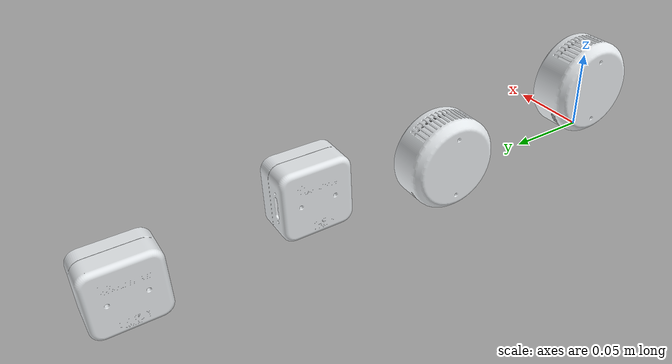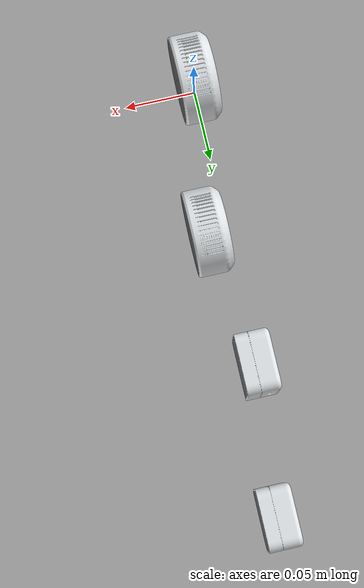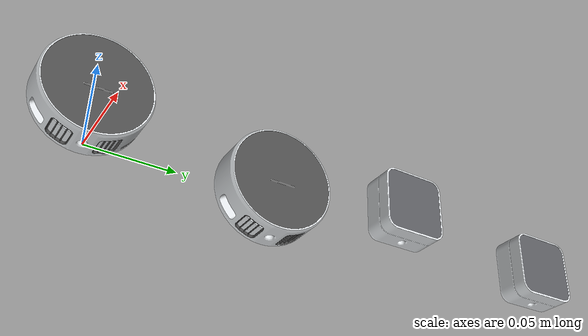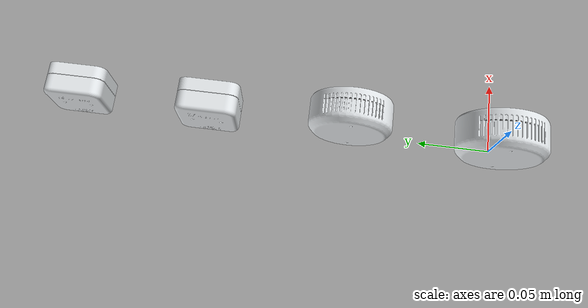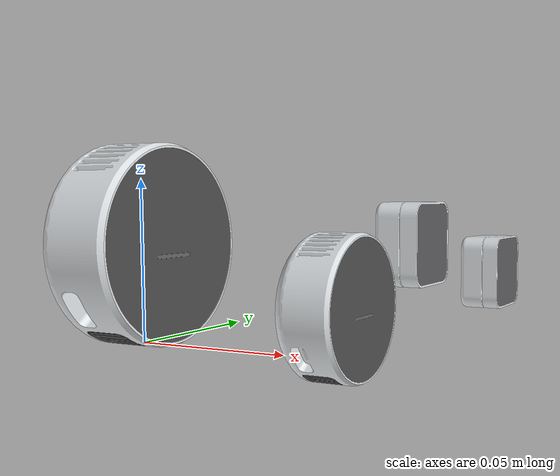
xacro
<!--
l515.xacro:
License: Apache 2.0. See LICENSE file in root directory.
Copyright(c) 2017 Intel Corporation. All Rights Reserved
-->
<?xml version="1.0"?>
<robot name="camera_test" xmlns:xacro="http://ros.org/wiki/xacro">
  <xacro:arg name="use_nominal_extrinsics" default="true"/>
  <xacro:arg name="add_plug" default="false" />
  <xacro:arg name="use_mesh" default="true" />
  <xacro:include filename="$(find tahoma_description)/urdf/l515.xacro" />
  <xacro:include filename="$(find tahoma_description)/urdf/d405.xacro" />

  <link name="base_link" />
  <xacro:sensor_l515 name="l515_bottom" parent="base_link" use_nominal_extrinsics="$(arg use_nominal_extrinsics)" add_plug="$(arg add_plug)" use_mesh="$(arg use_mesh)">
    <origin xyz="0 0 0" rpy="0 0 0"/>
  </xacro:sensor_l515>
    <xacro:sensor_l515 name="l515_back" parent="base_link" use_nominal_extrinsics="$(arg use_nominal_extrinsics)" add_plug="$(arg add_plug)" use_mesh="$(arg use_mesh)" attach_at_bottom="false">
    <origin xyz="0 .1 0" rpy="0 0 0"/>
  </xacro:sensor_l515>
  <xacro:sensor_d405 name="d405_bottom" parent="base_link" use_nominal_extrinsics="$(arg use_nominal_extrinsics)" add_plug="$(arg add_plug)" use_mesh="$(arg use_mesh)" attach_at_bottom="true">
    <origin xyz="0 .2 0" rpy="0 0 0"/>
  </xacro:sensor_d405>
  <xacro:sensor_d405 name="d405_back" parent="base_link" use_nominal_extrinsics="$(arg use_nominal_extrinsics)" add_plug="$(arg add_plug)" use_mesh="$(arg use_mesh)" attach_at_bottom="false">
    <origin xyz="0 .3 0" rpy="0 0 0"/>
  </xacro:sensor_d405>
</robot>

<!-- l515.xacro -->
<robot name="sensor_l515" xmlns:xacro="http://ros.org/wiki/xacro">
  <!-- Includes -->
  <xacro:include filename="$(find realsense2_description)/urdf/_materials.urdf.xacro"/>
  <xacro:include
          filename="$(find realsense2_description)/urdf/_usb_plug.urdf.xacro"/> <!-- this specific plug does not apply to L515 -->

  <xacro:macro name="sensor_l515"
               params="parent *origin name:=camera use_nominal_extrinsics:=false add_plug:=false use_mesh:=true attach_at_bottom:=true">
    <xacro:property name="M_PI" value="3.1415926535897931"/>

    <!-- The following values are approximate, and the camera node
     publishing TF values with actual calibrated camera extrinsic values -->
    <xacro:property name="l515_cam_depth_to_infra_offset" value="0.0"/>

    <!-- The following values model the aluminum peripherial case for the
  	L515 camera, with the camera joint represented by the actual
  	peripheral camera tripod mount -->
    <xacro:property name="l515_cam_width" value="0.061"/>
    <xacro:property name="l515_cam_height" value="0.06065"/>
    <xacro:property name="l515_cam_depth" value="0.026"/>
    <xacro:property name="l515_cam_mount_from_glass_offset" value="0.012"/>
    <!-- Zero depth to glass: see datasheet Revision 002, Fig. 2-2 page 11 -->
    <xacro:property name="l515_zero_depth_to_glass" value="0.0045"/>
    <!-- convenience precomputation to avoid clutter-->
    <xacro:property name="l515_depth_x_offset_from_mount"
                    value="${l515_cam_mount_from_glass_offset-l515_zero_depth_to_glass}"/>

    <!-- The following offset is relative the the physical L515 camera peripherial
  	camera tripod mount -->
    <xacro:property name="l515_cam_depth_px" value="${l515_depth_x_offset_from_mount}"/>
    <xacro:property name="l515_cam_depth_py" value="0.0"/>
    <xacro:property name="l515_cam_center" value="0.03015"/>
    <xacro:property name="l515_cam_center_to_transmitter_pz" value="0.001"/>
    <xacro:property name="l515_cam_transmitter_to_depth_pz" value="-0.010"/>
    <xacro:property name="l515_cam_transmitter_to_color_pz" value="0.014"/>
    <xacro:property name="l515_cam_depth_pz"
                    value="${l515_cam_center+l515_cam_center_to_transmitter_pz+l515_cam_transmitter_to_depth_pz}"/>
    <xacro:property name="l515_cam_center_to_depth_pz"
                    value="${l515_cam_center_to_transmitter_pz+l515_cam_transmitter_to_depth_pz}"/>
    <xacro:property name="abs_mount_from_center" value="0.020"/>

    <!-- IMU position (p) and rotation (r) offsets from the camera color frame -->
    <!-- These values are approximate and depend on the actual calibrated camera extrinsic values -->
    <xacro:property name="l515_cam_color_to_imu_px" value="-0.00410137791186571"/>
    <xacro:property name="l515_cam_color_to_imu_py" value="-0.0129784867167473"/>
    <xacro:property name="l515_cam_color_to_imu_pz" value="0.00256138201802969"/>
    <xacro:property name="l515_cam_color_to_imu_rx" value="-0.006161012"/>
    <xacro:property name="l515_cam_color_to_imu_ry" value="0.020193459"/>
    <xacro:property name="l515_cam_color_to_imu_rz" value="0.016301375"/>

    <!-- camera body, with origin at bottom screw mount -->
    <link name="${name}_bottom_screw_frame"/>
    <xacro:if value="${attach_at_bottom}">
      <joint name="${name}_joint" type="fixed">
        <xacro:insert_block name="origin"/>
        <parent link="${parent}"/>
        <child link="${name}_bottom_screw_frame"/>
      </joint>
    </xacro:if>
    <xacro:unless value="${attach_at_bottom}">
      <link name="${name}_back_to_bottom_shim"/>
      <joint name="${name}_adapter_joint" type="fixed">
        <xacro:insert_block name="origin"/>
        <parent link="${parent}"/>
        <child link="${name}_back_to_bottom_shim"/>
      </joint>
      <joint name="${name}_joint" type="fixed">
        <origin xyz=".014 0 -.03015" rpy="0 0 0"/>
        <parent link="${name}_back_to_bottom_shim"/>
        <child link="${name}_bottom_screw_frame"/>
      </joint>
    </xacro:unless>

    <joint name="${name}_link_joint" type="fixed">
      <origin xyz="${l515_cam_depth_px} ${l515_cam_depth_py} ${l515_cam_depth_pz}" rpy="0 0 0"/>
      <parent link="${name}_bottom_screw_frame"/>
      <child link="${name}_link"/>
    </joint>

    <link name="${name}_link">
      <visual>
        <!-- the mesh origin is in the middle of the front plate -->
        <xacro:if value="${use_mesh}">
          <origin xyz="${l515_zero_depth_to_glass} 0 ${-l515_cam_center_to_depth_pz}" rpy="0 0 ${M_PI/2}"/>
          <geometry>
            <mesh filename="package://tahoma_description/meshes/l515.dae"/>
          </geometry>
        </xacro:if>
        <xacro:unless value="${use_mesh}">
          <origin xyz="${-l515_cam_depth_px+l515_cam_mount_from_glass_offset-l515_cam_depth/2} 0 ${-l515_cam_center_to_depth_pz}"
                  rpy="${M_PI/2} 0 ${M_PI/2}"/>
          <geometry>
            <cylinder radius="${l515_cam_width/2.0}" length="${l515_cam_depth}"/>
          </geometry>
          <material name="aluminum"/>
        </xacro:unless>
      </visual>
      <collision>
        <origin xyz="${-l515_cam_depth_px+l515_cam_mount_from_glass_offset-l515_cam_depth/2} 0 ${-l515_cam_center_to_depth_pz}"
                rpy="${M_PI/2} 0 ${M_PI/2}"/>
        <geometry>
          <cylinder radius="${l515_cam_width/2.0}" length="${l515_cam_depth}"/>
        </geometry>
      </collision>
      <inertial>
        <!-- The following are not reliable values, and should not be used for modeling -->
        <!-- calculated assuming full cylinder as described here: https://en.wikipedia.org/wiki/List_of_moments_of_inertia -->
        <mass value="0.095"/>
        <origin xyz="0 0 0"/>
        <inertia ixx="0.000044" ixy="0.0" ixz="0.0" iyy="0.000027" iyz="0.0" izz="0.000027"/>
      </inertial>
    </link>

    <joint name="${name}_lower_mount_joint" type="fixed">
      <origin xyz="${l515_cam_mount_from_glass_offset-l515_cam_depth} 0 ${l515_cam_center-abs_mount_from_center}"
              rpy="0 0 0"/>
      <parent link="${name}_bottom_screw_frame"/>
      <child link="${name}_lower_mount"/>
    </joint>
    <link name="${name}_lower_mount"/>

    <joint name="${name}_upper_mount_joint" type="fixed">
      <origin xyz="${l515_cam_mount_from_glass_offset-l515_cam_depth} 0 ${l515_cam_center+abs_mount_from_center}"
              rpy="0 0 0"/>
      <parent link="${name}_bottom_screw_frame"/>
      <child link="${name}_upper_mount"/>
    </joint>
    <link name="${name}_upper_mount"/>

    <!-- Use the nominal extrinsics between camera frames if the calibrated extrinsics aren't being published. e.g. running the device in simulation  -->
    <xacro:if value="${use_nominal_extrinsics}">
      <!-- camera depth joints and links -->
      <joint name="${name}_depth_joint" type="fixed">
        <origin xyz="0 0 0" rpy="0 0 0"/>
        <parent link="${name}_link"/>
        <child link="${name}_depth_frame"/>
      </joint>
      <link name="${name}_depth_frame"/>

      <joint name="${name}_depth_optical_joint" type="fixed">
        <origin xyz="0 0 0" rpy="${-M_PI/2} 0 ${-M_PI/2}"/>
        <parent link="${name}_depth_frame"/>
        <child link="${name}_depth_optical_frame"/>
      </joint>
      <link name="${name}_depth_optical_frame"/>

      <!-- camera left IR joints and links -->
      <joint name="${name}_infra_joint" type="fixed">
        <origin xyz="0 ${l515_cam_depth_to_infra_offset} 0" rpy="0 0 0"/>
        <parent link="${name}_link"/>
        <child link="${name}_infra_frame"/>
      </joint>
      <link name="${name}_infra_frame"/>

      <joint name="${name}_infra_optical_joint" type="fixed">
        <origin xyz="0 0 0" rpy="${-M_PI/2} 0 ${-M_PI/2}"/>
        <parent link="${name}_infra_frame"/>
        <child link="${name}_infra_optical_frame"/>
      </joint>
      <link name="${name}_infra_optical_frame"/>

      <!-- camera color joints and links -->
      <joint name="${name}_color_joint" type="fixed">
        <origin xyz="0 0 ${-l515_cam_transmitter_to_depth_pz+l515_cam_transmitter_to_color_pz}" rpy="0 0 0"/>
        <parent link="${name}_link"/>
        <child link="${name}_color_frame"/>
      </joint>
      <link name="${name}_color_frame"/>

      <joint name="${name}_color_optical_joint" type="fixed">
        <origin xyz="0 0 0" rpy="${-M_PI/2} 0 ${-M_PI/2}"/>
        <parent link="${name}_color_frame"/>
        <child link="${name}_color_optical_frame"/>
      </joint>
      <link name="${name}_color_optical_frame"/>

      <!-- camera IMU joints and links -->
      <link name="${name}_gyro_frame"/>
      <link name="${name}_gyro_optical_frame"/>
      <link name="${name}_accel_frame"/>
      <link name="${name}_accel_optical_frame"/>

      <joint name="${name}_gyro_joint" type="fixed">
        <origin xyz="${l515_cam_color_to_imu_px} ${l515_cam_color_to_imu_py} ${l515_cam_color_to_imu_pz}"
                rpy="${l515_cam_color_to_imu_rx} ${l515_cam_color_to_imu_ry} ${l515_cam_color_to_imu_rz}"/>
        <parent link="${name}_color_frame"/>
        <child link="${name}_gyro_frame"/>
      </joint>

      <joint name="${name}_gyro_optical_joint" type="fixed">
        <origin xyz="0 0 0" rpy="${-M_PI/2} 0 ${-M_PI/2}"/>
        <parent link="${name}_gyro_frame"/>
        <child link="${name}_gyro_optical_frame"/>
      </joint>

      <joint name="${name}_accel_joint" type="fixed">
        <origin xyz="${l515_cam_color_to_imu_px} ${l515_cam_color_to_imu_py} ${l515_cam_color_to_imu_pz}"
                rpy="${l515_cam_color_to_imu_rx} ${l515_cam_color_to_imu_ry} ${l515_cam_color_to_imu_rz}"/>
        <parent link="${name}_color_frame"/>
        <child link="${name}_accel_frame"/>
      </joint>

      <joint name="${name}_accel_optical_joint" type="fixed">
        <origin xyz="0 0 0" rpy="${-M_PI/2} 0 ${-M_PI/2}"/>
        <parent link="${name}_accel_frame"/>
        <child link="${name}_accel_optical_frame"/>
      </joint>
    </xacro:if>
    <xacro:if value="${add_plug}">
      <xacro:usb_plug parent="${name}_bottom_screw_frame" name="${name}_usb_plug">
        <origin xyz="${l515_cam_mount_from_glass_offset-0.0148} -0.018 0.018" rpy="${M_PI/4} 0 0 "/>
      </xacro:usb_plug>
    </xacro:if>

  </xacro:macro>
</robot>

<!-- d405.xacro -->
<robot name="sensor_d405" xmlns:xacro="http://ros.org/wiki/xacro">
  <!-- Includes -->

  <xacro:include filename="$(find realsense2_description)/urdf/_usb_plug.urdf.xacro" />

  <xacro:macro name="sensor_d405"
               params="parent *origin  name:=camera  use_nominal_extrinsics:=false add_plug:=false use_mesh:=true attach_at_bottom:=true">

    <!-- The following values are approximate, and the camera node
     publishing TF values with actual calibrated camera extrinsic values -->
    <xacro:property name="d405_cam_depth_to_infra1_offset" value="0.009"/>
    <xacro:property name="d405_cam_depth_to_infra2_offset" value="-0.009"/>
    <!-- Color stream from left imager -->
    <xacro:property name="d405_cam_depth_to_color_offset" value="-0.009"/>

    <!-- The following values model the aluminum peripherial case for the
  	d405 camera, with the camera joint represented by the actual
  	peripherial camera tripod mount -->
    <xacro:property name="d405_cam_width" value="0.042"/>
    <xacro:property name="d405_cam_height" value="0.042"/>
    <xacro:property name="d405_cam_depth" value="0.023"/>
    <xacro:property name="d405_cam_mount_from_center_offset" value="0.00835"/>
    <xacro:property name="d405_cam_mount_from_front" value=".01465"/>

    <!-- The following offset is relative the  physical d405 camera peripheral
  	camera tripod mount -->
    <!-- Distance from mount to front glass, minus front glass to depth origin (via datasheet) -->
    <xacro:property name="d405_cam_depth_px" value="${d405_cam_mount_from_front - 0.0027}"/>
    <xacro:property name="d405_cam_depth_py" value="0"/>
    <xacro:property name="d405_cam_depth_pz" value="${d405_cam_height/2}"/>

    <!-- camera body, with origin at bottom screw mount -->
    <link name="${name}_bottom_screw_frame"/>
    <xacro:if value="${attach_at_bottom}">
      <joint name="${name}_joint" type="fixed">
        <xacro:insert_block name="origin"/>
        <parent link="${parent}"/>
        <child link="${name}_bottom_screw_frame"/>
      </joint>
    </xacro:if>
    <xacro:unless value="${attach_at_bottom}">
      <link name="${name}_back_to_bottom_shim"/>
      <joint name="${name}_adapter_joint" type="fixed">
        <xacro:insert_block name="origin"/>
        <parent link="${parent}"/>
        <child link="${name}_back_to_bottom_shim"/>
      </joint>
      <joint name="${name}_joint" type="fixed">
        <origin xyz=".00835 0 -.021236" rpy="0 0 0"/>
        <parent link="${name}_back_to_bottom_shim"/>
        <child link="${name}_bottom_screw_frame"/>
      </joint>
    </xacro:unless>

    <joint name="${name}_link_joint" type="fixed">
      <origin xyz="${d405_cam_depth_px} ${d405_cam_depth_py} ${d405_cam_depth_pz}" rpy="0 0 0"/>
      <parent link="${name}_bottom_screw_frame"/>
      <child link="${name}_link" />
    </joint>

    <link name="${name}_link">
      <visual>
        <xacro:if value="${use_mesh}">
          <origin xyz="${-d405_cam_depth_px} 0 ${-d405_cam_height / 2}" rpy="0 0 0 "/>
          <geometry>
            <mesh filename="package://tahoma_description/meshes/d405.dae" />
          </geometry>
          <material name="aluminum"/>
        </xacro:if>
        <xacro:unless value="${use_mesh}">
          <origin xyz="0 ${-d405_cam_depth_py} 0" rpy="0 0 0"/>
          <geometry>
            <box size="${d405_cam_depth} ${d405_cam_width} ${d405_cam_height}"/>
          </geometry>
        </xacro:unless>
      </visual>
      <collision>
        <origin xyz="${-d405_cam_depth + d405_cam_mount_from_front} ${-d405_cam_depth_py} 0" rpy="0 0 0"/>
        <geometry>
        <box size="${d405_cam_depth} ${d405_cam_height} ${d405_cam_width}"/>
        </geometry>
      </collision>
      <inertial>
        <mass value="0.072" />
        <!-- The following are not reliable values, and should not be used for modeling -->
        <origin xyz="0 0 0" />
        <inertia ixx="0.003881243" ixy="0.0" ixz="0.0" iyy="0.000498940" iyz="0.0" izz="0.003879257" />
      </inertial>
    </link>

    <!-- Use the nominal extrinsics between camera frames if the calibrated extrinsics aren't being published. e.g. running the device in simulation  -->
    <xacro:if value="${use_nominal_extrinsics}">
      <!-- camera depth joints and links -->
      <joint name="${name}_depth_joint" type="fixed">
        <origin xyz="0 0 0" rpy="0 0 0"/>
        <parent link="${name}_link"/>
        <child link="${name}_depth_frame" />
      </joint>
      <link name="${name}_depth_frame"/>

      <joint name="${name}_depth_optical_joint" type="fixed">
        <origin xyz="0 0 0" rpy="${-pi/2} 0 ${-pi/2}" />
        <parent link="${name}_depth_frame" />
        <child link="${name}_depth_optical_frame" />
      </joint>
      <link name="${name}_depth_optical_frame"/>

      <!-- camera left IR joints and links -->
      <joint name="${name}_infra1_joint" type="fixed">
        <origin xyz="0 ${d405_cam_depth_to_infra1_offset} 0" rpy="0 0 0" />
        <parent link="${name}_link" />
        <child link="${name}_infra1_frame" />
      </joint>
      <link name="${name}_infra1_frame"/>

      <joint name="${name}_infra1_optical_joint" type="fixed">
        <origin xyz="0 0 0" rpy="${-pi/2} 0 ${-pi/2}" />
        <parent link="${name}_infra1_frame" />
        <child link="${name}_infra1_optical_frame" />
      </joint>
      <link name="${name}_infra1_optical_frame"/>

      <!-- camera right IR joints and links -->
      <joint name="${name}_infra2_joint" type="fixed">
        <origin xyz="0 ${d405_cam_depth_to_infra2_offset} 0" rpy="0 0 0" />
        <parent link="${name}_link" />
        <child link="${name}_infra2_frame" />
      </joint>
      <link name="${name}_infra2_frame"/>

      <joint name="${name}_infra2_optical_joint" type="fixed">
        <origin xyz="0 0 0" rpy="${-pi/2} 0 ${-pi/2}" />
        <parent link="${name}_infra2_frame" />
        <child link="${name}_infra2_optical_frame" />
      </joint>
      <link name="${name}_infra2_optical_frame"/>

      <!-- camera color joints and links -->
      <joint name="${name}_color_joint" type="fixed">
        <origin xyz="0 ${d405_cam_depth_to_color_offset} 0" rpy="0 0 0" />
        <parent link="${name}_link" />
        <child link="${name}_color_frame" />
      </joint>
      <link name="${name}_color_frame"/>

      <joint name="${name}_color_optical_joint" type="fixed">
        <origin xyz="0 0 0" rpy="${-pi/2} 0 ${-pi/2}" />
        <parent link="${name}_color_frame" />
        <child link="${name}_color_optical_frame" />
      </joint>
      <link name="${name}_color_optical_frame"/>
    </xacro:if>

    <xacro:if value="${add_plug}">
      <xacro:usb_plug parent="${name}_link" name="${name}_usb_plug">
        <origin xyz="${d405_cam_mount_from_center_offset - 0.01587} ${-d405_cam_depth_py - 0.0358} 0" rpy="0 0 0"/>
      </xacro:usb_plug>
    </xacro:if>
  </xacro:macro>
</robot>
